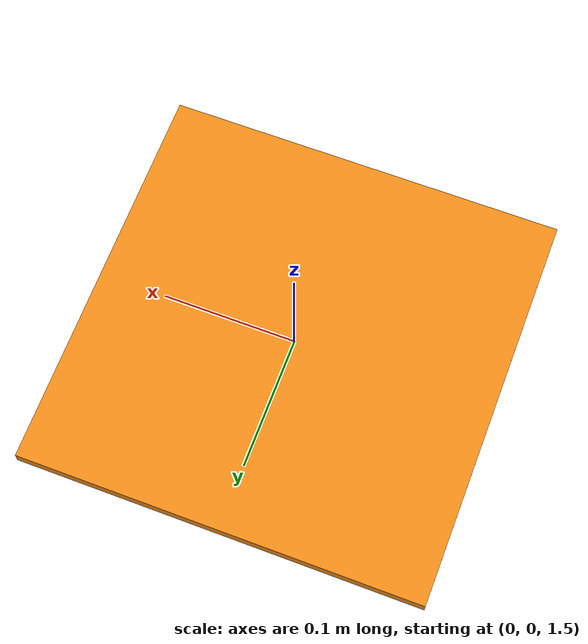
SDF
<sdf version="1.7">
  <model name="landing_platform">
    <static>true</static>
    <link name="base_link">
      <collision name="collision">
        <geometry>
          <box>
            <size>0.3 0.3 0.01</size>
          </box>
        </geometry>
        <friction>
          <ode>
            <mu>100.0</mu>
            <mu2>100.0</mu2>
          </ode>
        </friction>
        <pose>0 0 1.5 0 0 0</pose>
      </collision>
      <visual name="visual">
        <geometry>
          <box>
            <size>0.3 0.3 0.01</size>
          </box>
        </geometry>
        <pose>0 0 1.5 0 0 0</pose>
        <material>
          <script>
            <uri>file://media/materials/scripts/gazebo.material</uri>
            <name>Gazebo/Orange</name>
          </script>
        </material>
      </visual>
    </link>
  </model>
</sdf>
